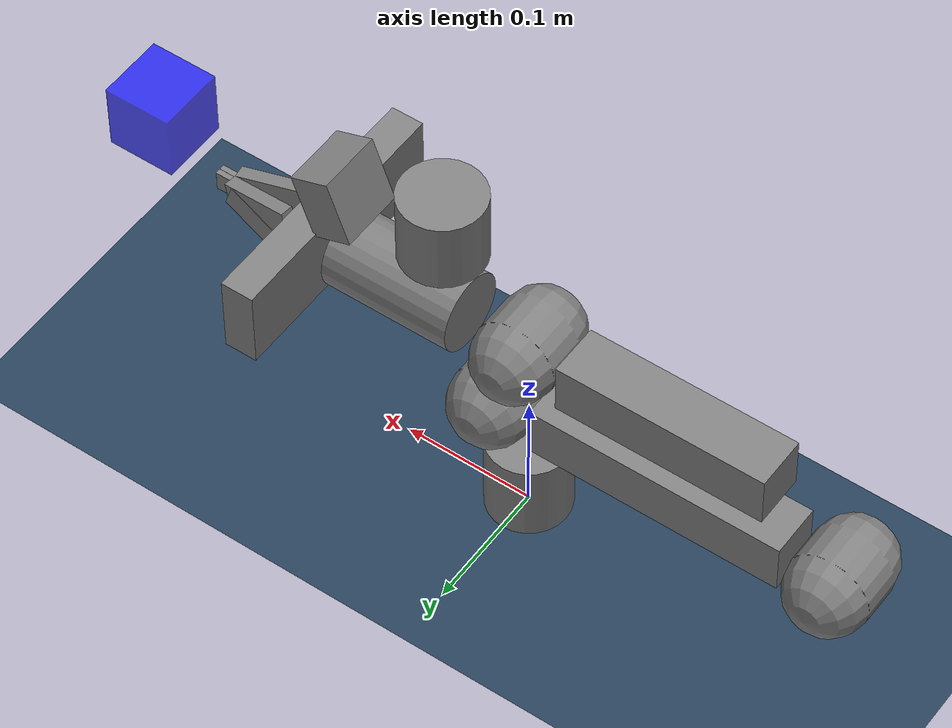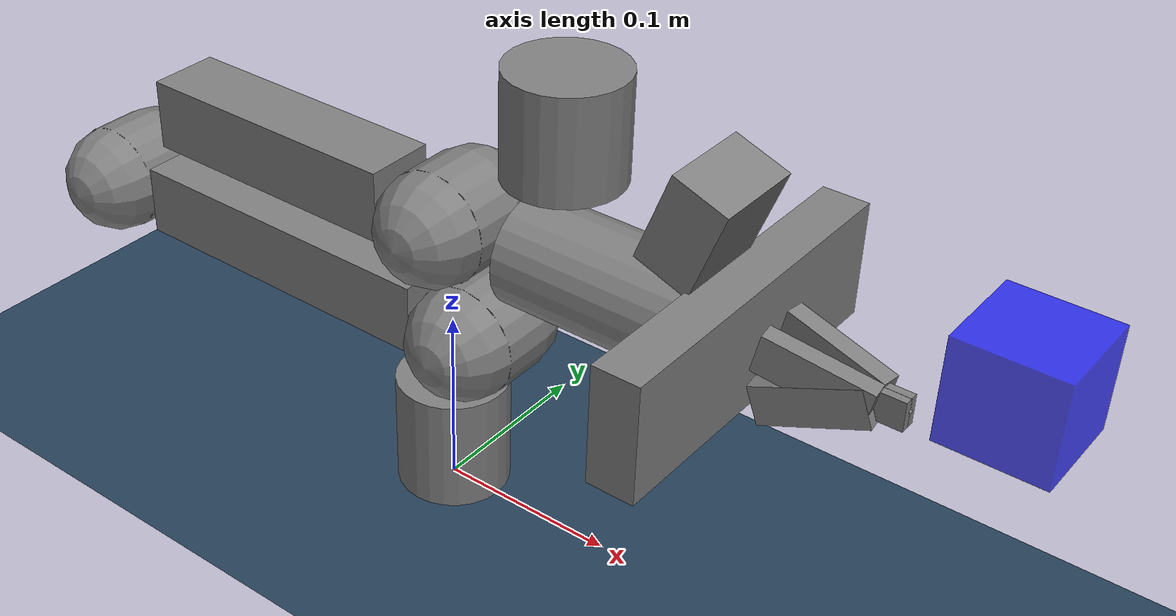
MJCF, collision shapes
<mujoco model="wxai base follow target scene">
  <include file="wxai_follower.xml"/>

  <statistic center="0 0 0.1" extent="0.6"/>

  <visual>
    <headlight diffuse="0.6 0.6 0.6" ambient="0.3 0.3 0.3" specular="0 0 0"/>
    <rgba haze="0.15 0.25 0.35 1"/>
    <global azimuth="160" elevation="-20"/>
  </visual>

  <asset>
    <texture type="skybox" builtin="gradient" rgb1="0.3 0.5 0.7" rgb2="0 0 0" width="512" height="3072"/>
    <texture type="2d" name="groundplane" builtin="checker" mark="edge" rgb1="0.2 0.3 0.4" rgb2="0.1 0.2 0.3"
      markrgb="0.8 0.8 0.8" width="300" height="300"/>
    <material name="groundplane" texture="groundplane" texuniform="true" texrepeat="5 5" reflectance="0.2"/>
  </asset>

  <worldbody>
    <light pos="0 0 1.5" dir="0 0 -1" directional="true"/>
    <geom name="floor" size="0 0 0.05" type="plane" material="groundplane"/>

    <!-- Target cube: kinematic body (not affected by gravity), blue color like IsaacSim -->
    <body name="target_cube" pos="0.3 0.0 0.2" mocap="true">
      <geom name="target_cube_visual" type="box" size="0.02575 0.02575 0.02575" rgba="0 0 1 0.7" contype="0" conaffinity="0"/>
      <site name="target_site" pos="0 0 0" size="0.0001" rgba="1 0 0 1"/>
    </body>
  </worldbody>
</mujoco>

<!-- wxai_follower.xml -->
<mujoco model="wxai_follower">
  <compiler angle="radian" meshdir="../meshes" texturedir="../" autolimits="true"/>

  <option integrator="implicitfast"/>

  <default>
    <default class="visual">
      <geom type="mesh" group="2" contype="0" conaffinity="0" material="trossen_black"/>
    </default>
    <default class="collision">
      <geom type="cylinder" group="3" mass="0" density="0"/>
    </default>
  </default>

  <asset>
    <material name="trossen_black" rgba="0.1 0.1 0.1 1"/>

    <mesh name="base_link" file="base_link.stl"/>
    <mesh name="link_1" file="link_1.stl"/>
    <mesh name="link_2" file="link_2.stl"/>
    <mesh name="link_3" file="link_3.stl"/>
    <mesh name="link_4" file="link_4.stl"/>
    <mesh name="link_5" file="link_5.stl"/>
    <mesh name="link_6" file="link_6.stl"/>
    <mesh name="carriage_right" file="carriage_right.stl"/>
    <mesh name="carriage_left" file="carriage_left.stl"/>
    <mesh name="camera_mount_d405" file="camera_mount_d405.stl"/>
    <mesh name="d405" file="d405.stl" scale="0.001 0.001 0.001"/>
    <mesh name="gripper_left" file="gripper_left.stl"/>
    <mesh name="gripper_right" file="gripper_right.stl"/>
  </asset>

  <worldbody>
    <body name="base_link" pos="0 0 0" gravcomp="1">
      <inertial pos="-0.00014175 -5.228e-05 0.03175177" quat="0.503748 -0.507380 -0.494230 -0.494510" mass="0.45969858" diaginertia="0.000213926 0.000416701 0.000448963"/>
      <geom class="visual" mesh="base_link"/>
      <geom class="collision" type="cylinder" size="0.031 0.0325" pos="0 0 0.0325" quat="1 0 0 0"/>
      <body name="link_1" pos="0 0 0.05725" gravcomp="1">
        <inertial pos="-0.00011075 0.00171176 0.0204459" quat="0.313955 0.305238 -0.643575 0.627752" mass="0.152704" diaginertia="0.000203432 0.000173907 8.3521e-05"/>
        <joint name="joint_0" pos="0 0 0" axis="0 0 1" range="-3.05433 3.05433" armature="0.032" frictionloss="0.1" actuatorgravcomp="true"/>
        <geom class="visual" mesh="link_1"/>
        <body name="link_2" pos="0.02 0 0.04625" gravcomp="1">
          <inertial pos="-0.131215 -0.00292583 0.00021345" quat="-0.00123582 0.706546 -0.00109575 0.707665" mass="1.15316" diaginertia="0.0179449 0.0173612 0.00102628"/>
          <joint name="joint_1" pos="0 0 0" axis="0 1 0" range="0 3.14159" armature="0.032" frictionloss="0.1" actuatorgravcomp="true"/>
          <geom class="visual" mesh="link_2"/>
          <geom class="collision" type="capsule" size="0.031 0.015" pos="0 0 0" quat="1 1 0 0"/>
          <geom class="collision" type="box" size="0.0975 0.02 0.02" pos="-0.131 0 0" quat="1 0 0 0"/>
          <body name="link_3" pos="-0.264 0 0" gravcomp="1">
            <inertial pos="0.180836 -0.0009409 0.0555494" quat="0.0103901 0.669684 -0.0033175 0.742566" mass="0.686666" diaginertia="0.00566898 0.00547578 0.00059316"/>
            <joint name="joint_2" pos="0 0 0" axis="0 -1 0" range="0 2.35619" armature="0.032" frictionloss="0.1" actuatorgravcomp="true"/>
            <geom class="visual" mesh="link_3"/>
            <geom class="collision" type="capsule" size="0.031 0.015" pos="0 0 0" quat="1 1 0 0"/>
            <geom class="collision" type="box" size="0.08 0.02 0.02" pos="0.13 0 0.06" quat="1 0 0 0"/>
            <body name="link_4" pos="0.245 0 0.06" gravcomp="1">
              <inertial pos="0.0579784 0.00027145 0.0588445" quat="0.948688 0.0346237 0.307828 0.0635164" mass="0.457899" diaginertia="0.000670827 0.000661455 0.000288648"/>
              <joint name="joint_3" pos="0 0 0" axis="0 -1 0" range="-1.5708 1.5708" armature="0.0018" frictionloss="0.1" actuatorgravcomp="true"/>
              <geom class="visual" mesh="link_4"/>
              <geom class="collision" type="capsule" size="0.031 0.015" pos="0 0 0" quat="1 1 0 0"/>
              <body name="link_5" pos="0.06775 0 0.0455" gravcomp="1">
                <inertial pos="0.00412447 -1.138e-05 -0.0428318" quat="0.496144 0.502128 0.503595 0.498098" mass="0.366939" diaginertia="0.000320622 0.00026751 0.000189108"/>
                <joint name="joint_4" pos="0 0 0" axis="0 0 -1" range="-1.5708 1.5708" armature="0.0018" frictionloss="0.1" actuatorgravcomp="true"/>
                <geom class="visual" mesh="link_5"/>
                <geom class="collision" type="cylinder" size="0.031 0.028" pos="0 0 0.03" quat="1 0 0 0"/>
                <body name="link_6" pos="0.02895 0 -0.0455" gravcomp="1">
                  <inertial pos="0.046841 0.00145133 0.00895674" quat="0.275854 0.291255 -0.691957 0.600225" mass="0.671874" diaginertia="0.00118316 0.00110863 0.00078309"/>
                  <joint name="joint_5" pos="0 0 0" axis="1 0 0" range="-3.14159 3.14159" armature="0.0018" frictionloss="0.1" actuatorgravcomp="true"/>
                  <geom class="visual" mesh="link_6"/>
                  <geom class="collision" type="cylinder" size="0.029 0.05" pos="0 0 0" quat="1 0 1 0"/>
                  <geom class="collision" type="box" size="0.0125 0.094 0.031" pos="0.0685 0 0" quat="1 0 0 0"/>
                  <!-- End-effector site at gripper tip -->
                  <site name="ee_site" pos="0.156 0 0" size="0.001"/>
                  <geom class="visual" pos="0.012 0 0" quat="1 0 0 0" mesh="camera_mount_d405"/>
                  <geom class="collision" type="box" size="0.0155 0.025 0.025" pos="0.0513206 0 0.0569399" quat="0.984808 0 0.173648 0"/>
                  <geom class="visual" type="box" size="0.0115 0.021 0.021" pos="0.0513206 0 0.0569399" quat="0.984808 0 0.173648 0"/>
                  <site name="camera_color_frame" pos="0.05864 0.009 0.05427" quat="0.9848078 0 0.1736482 0" size="0.005"/>
                  <camera name="cam" pos="0.05864 0.009 0.05427" quat="0.5793 0.4056 -0.4056 -0.5793" mode="fixed" fovy="87"/>
                  <body name="carriage_right" pos="0.0865 -0.023 0" gravcomp="1">
                    <inertial pos="0.00169015 0.00592793 0.00201817" quat="-0.370973 0.740886 -0.0847721 0.553427" mass="0.081271" diaginertia="4.29565e-05 3.87081e-05 2.21528e-05"/>
                    <joint name="right_carriage_joint" pos="0 0 0" axis="0 -1 0" type="slide" range="0 0.044" armature="0.1" frictionloss="0.1" actuatorgravcomp="true"/>
                    <geom class="visual" mesh="carriage_right"/>
                    <geom class="visual" mesh="gripper_right"/>
                    <geom class="collision" type="box" size="0.0275 0.005 0.01" pos="0.0286 0.01436 0.0037" quat="0.99257 -0.00451 0.10246 0.06547"/>
                    <geom class="collision" type="box" size="0.0275 0.005 0.01" pos="0.0285 0.01429 -0.00973" quat="0.98344 0.0133 -0.16893 0.06427"/>
                    <geom class="collision" type="box" size="0.00732 0.00214 0.00767" pos="0.0622 0.02083 -0.00105" quat="1 0 0 0"/>
                  </body>
                  <body name="carriage_left" pos="0.0865 0.023 0" gravcomp="1">
                    <inertial pos="0.00169017 -0.00592796 -0.00365701" quat="-0.0382691 0.628022 -0.255101 0.734198" mass="0.081271" diaginertia="4.21112e-05 3.61943e-05 2.40003e-05"/>
                    <joint name="left_carriage_joint" pos="0 0 0" axis="0 1 0" type="slide" range="0 0.044" armature="0.1" frictionloss="0.1" actuatorgravcomp="true"/>
                    <geom class="visual" mesh="carriage_left"/>
                    <geom class="visual" mesh="gripper_left"/>
                    <geom class="collision" type="box" size="0.0275 0.005 0.01" pos="0.0286 -0.01436 0.0037" quat="0.99257 0.00451 0.10246 -0.06547"/>
                    <geom class="collision" type="box" size="0.0275 0.005 0.01" pos="0.0285 -0.01429 -0.00973" quat="0.98344 -0.0133 -0.16893 -0.06427"/>
                    <geom class="collision" type="box" size="0.00732 0.00214 0.00767" pos="0.0622 -0.02083 -0.00105" quat="1 0 0 0"/>
                  </body>
                </body>
              </body>
            </body>
          </body>
        </body>
      </body>
    </body>
  </worldbody>

  <equality>
    <joint joint1="right_carriage_joint" joint2="left_carriage_joint" polycoef="0 1 0 0 0"/>
  </equality>

  <actuator>
    <position name="joint_0" joint="joint_0" kp="200" kv="10" ctrlrange="-3.05433 3.05433" forcerange="-27 27"/>
    <position name="joint_1" joint="joint_1" kp="200" kv="10" ctrlrange="0 3.14159" forcerange="-27 27"/>
    <position name="joint_2" joint="joint_2" kp="200" kv="10" ctrlrange="0 2.35619" forcerange="-27 27"/>
    <position name="joint_3" joint="joint_3" kp="100" kv="5" ctrlrange="-1.5708 1.5708" forcerange="-7 7"/>
    <position name="joint_4" joint="joint_4" kp="50" kv="5" ctrlrange="-1.5708 1.5708" forcerange="-7 7"/>
    <position name="joint_5" joint="joint_5" kp="50" kv="5" ctrlrange="-3.14159 3.14159" forcerange="-7 7"/>
    <position name="left_gripper" joint="left_carriage_joint" kp="1000" kv="50" ctrlrange="0 0.044" forcerange="-400 400"/>
  </actuator>

  <keyframe>
    <key name="home" qpos="0 0 0 0 0 0 0 0" ctrl="0 0 0 0 0 0 0"/>
  </keyframe>
</mujoco>
